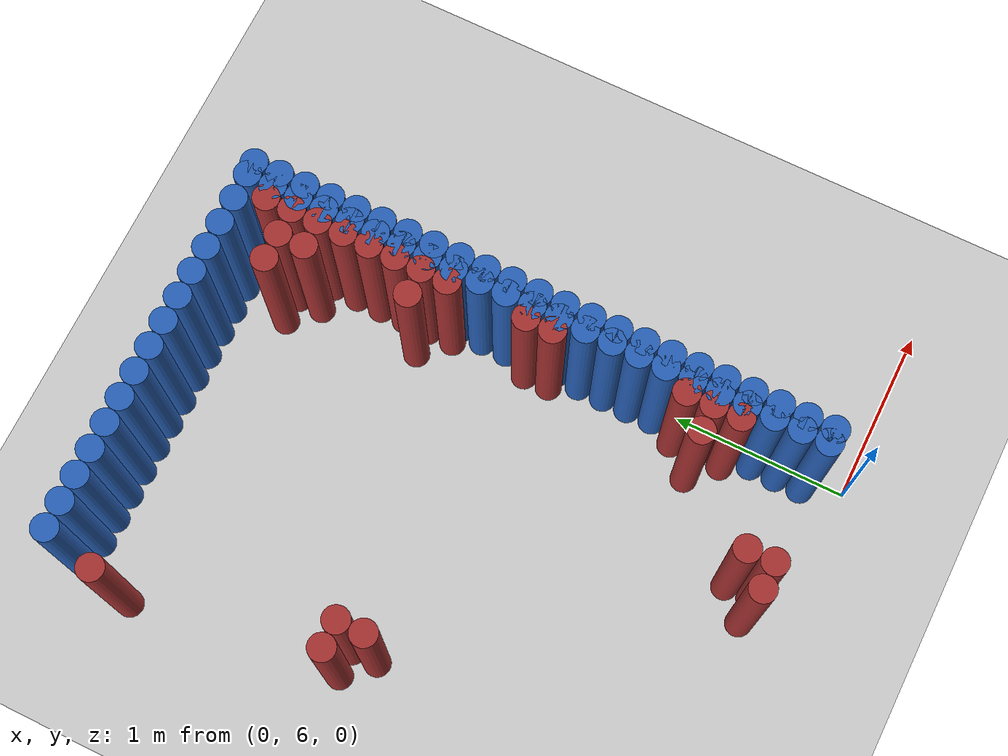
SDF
<sdf version="1.6">
 <world name="barn_world">
  <model name="ground_plane">
   <static>1</static>
   <link name="link">
    <collision name="collision">
     <geometry><plane><normal>0 0 1</normal><size>100 100</size></plane></geometry>
    </collision>
    <visual name="visual">
     <geometry><plane><normal>0 0 1</normal><size>100 100</size></plane></geometry>
     <material>
      <script><uri>file://media/materials/scripts/gazebo.material</uri><name>Gazebo/Grey</name></script>
     </material>
    </visual>
   </link>
  </model>
  <model name="unit_cylinder_193">
   <static>1</static>
   <pose>-2.2500 9.2250 0.5 0 0 0</pose>
   <link name="link">
    <collision name="collision">
     <geometry><cylinder><radius>0.075</radius><length>1</length></cylinder></geometry>
    </collision>
    <visual name="visual">
     <geometry><cylinder><radius>0.075</radius><length>1</length></cylinder></geometry>
     <material><ambient>0.648 0.192 0.192 1</ambient><diffuse>0.648 0.192 0.192 1</diffuse></material>
    </visual>
   </link>
  </model>
  <model name="unit_cylinder_194">
   <static>1</static>
   <pose>-2.1000 8.0250 0.5 0 0 0</pose>
   <link name="link">
    <collision name="collision">
     <geometry><cylinder><radius>0.075</radius><length>1</length></cylinder></geometry>
    </collision>
    <visual name="visual">
     <geometry><cylinder><radius>0.075</radius><length>1</length></cylinder></geometry>
     <material><ambient>0.648 0.192 0.192 1</ambient><diffuse>0.648 0.192 0.192 1</diffuse></material>
    </visual>
   </link>
  </model>
  <model name="unit_cylinder_195">
   <static>1</static>
   <pose>-1.9500 7.8750 0.5 0 0 0</pose>
   <link name="link">
    <collision name="collision">
     <geometry><cylinder><radius>0.075</radius><length>1</length></cylinder></geometry>
    </collision>
    <visual name="visual">
     <geometry><cylinder><radius>0.075</radius><length>1</length></cylinder></geometry>
     <material><ambient>0.648 0.192 0.192 1</ambient><diffuse>0.648 0.192 0.192 1</diffuse></material>
    </visual>
   </link>
  </model>
  <model name="unit_cylinder_196">
   <static>1</static>
   <pose>-1.9500 8.0250 0.5 0 0 0</pose>
   <link name="link">
    <collision name="collision">
     <geometry><cylinder><radius>0.075</radius><length>1</length></cylinder></geometry>
    </collision>
    <visual name="visual">
     <geometry><cylinder><radius>0.075</radius><length>1</length></cylinder></geometry>
     <material><ambient>0.648 0.192 0.192 1</ambient><diffuse>0.648 0.192 0.192 1</diffuse></material>
    </visual>
   </link>
  </model>
  <model name="unit_cylinder_197">
   <static>1</static>
   <pose>-0.9000 6.2250 0.5 0 0 0</pose>
   <link name="link">
    <collision name="collision">
     <geometry><cylinder><radius>0.075</radius><length>1</length></cylinder></geometry>
    </collision>
    <visual name="visual">
     <geometry><cylinder><radius>0.075</radius><length>1</length></cylinder></geometry>
     <material><ambient>0.648 0.192 0.192 1</ambient><diffuse>0.648 0.192 0.192 1</diffuse></material>
    </visual>
   </link>
  </model>
  <model name="unit_cylinder_198">
   <static>1</static>
   <pose>-0.7500 6.2250 0.5 0 0 0</pose>
   <link name="link">
    <collision name="collision">
     <geometry><cylinder><radius>0.075</radius><length>1</length></cylinder></geometry>
    </collision>
    <visual name="visual">
     <geometry><cylinder><radius>0.075</radius><length>1</length></cylinder></geometry>
     <material><ambient>0.648 0.192 0.192 1</ambient><diffuse>0.648 0.192 0.192 1</diffuse></material>
    </visual>
   </link>
  </model>
  <model name="unit_cylinder_199">
   <static>1</static>
   <pose>-0.7500 6.3750 0.5 0 0 0</pose>
   <link name="link">
    <collision name="collision">
     <geometry><cylinder><radius>0.075</radius><length>1</length></cylinder></geometry>
    </collision>
    <visual name="visual">
     <geometry><cylinder><radius>0.075</radius><length>1</length></cylinder></geometry>
     <material><ambient>0.648 0.192 0.192 1</ambient><diffuse>0.648 0.192 0.192 1</diffuse></material>
    </visual>
   </link>
  </model>
  <model name="unit_cylinder_200">
   <static>1</static>
   <pose>-0.4500 9.2250 0.5 0 0 0</pose>
   <link name="link">
    <collision name="collision">
     <geometry><cylinder><radius>0.075</radius><length>1</length></cylinder></geometry>
    </collision>
    <visual name="visual">
     <geometry><cylinder><radius>0.075</radius><length>1</length></cylinder></geometry>
     <material><ambient>0.648 0.192 0.192 1</ambient><diffuse>0.648 0.192 0.192 1</diffuse></material>
    </visual>
   </link>
  </model>
  <model name="unit_cylinder_202">
   <static>1</static>
   <pose>-0.3000 6.8250 0.5 0 0 0</pose>
   <link name="link">
    <collision name="collision">
     <geometry><cylinder><radius>0.075</radius><length>1</length></cylinder></geometry>
    </collision>
    <visual name="visual">
     <geometry><cylinder><radius>0.075</radius><length>1</length></cylinder></geometry>
     <material><ambient>0.648 0.192 0.192 1</ambient><diffuse>0.648 0.192 0.192 1</diffuse></material>
    </visual>
   </link>
  </model>
  <model name="unit_cylinder_203">
   <static>1</static>
   <pose>-0.3000 8.4750 0.5 0 0 0</pose>
   <link name="link">
    <collision name="collision">
     <geometry><cylinder><radius>0.075</radius><length>1</length></cylinder></geometry>
    </collision>
    <visual name="visual">
     <geometry><cylinder><radius>0.075</radius><length>1</length></cylinder></geometry>
     <material><ambient>0.648 0.192 0.192 1</ambient><diffuse>0.648 0.192 0.192 1</diffuse></material>
    </visual>
   </link>
  </model>
  <model name="unit_cylinder_204">
   <static>1</static>
   <pose>-0.3000 9.0750 0.5 0 0 0</pose>
   <link name="link">
    <collision name="collision">
     <geometry><cylinder><radius>0.075</radius><length>1</length></cylinder></geometry>
    </collision>
    <visual name="visual">
     <geometry><cylinder><radius>0.075</radius><length>1</length></cylinder></geometry>
     <material><ambient>0.648 0.192 0.192 1</ambient><diffuse>0.648 0.192 0.192 1</diffuse></material>
    </visual>
   </link>
  </model>
  <model name="unit_cylinder_205">
   <static>1</static>
   <pose>-0.3000 9.2250 0.5 0 0 0</pose>
   <link name="link">
    <collision name="collision">
     <geometry><cylinder><radius>0.075</radius><length>1</length></cylinder></geometry>
    </collision>
    <visual name="visual">
     <geometry><cylinder><radius>0.075</radius><length>1</length></cylinder></geometry>
     <material><ambient>0.648 0.192 0.192 1</ambient><diffuse>0.648 0.192 0.192 1</diffuse></material>
    </visual>
   </link>
  </model>
  <model name="unit_cylinder_209">
   <static>1</static>
   <pose>-0.1500 6.6750 0.5 0 0 0</pose>
   <link name="link">
    <collision name="collision">
     <geometry><cylinder><radius>0.075</radius><length>1</length></cylinder></geometry>
    </collision>
    <visual name="visual">
     <geometry><cylinder><radius>0.075</radius><length>1</length></cylinder></geometry>
     <material><ambient>0.648 0.192 0.192 1</ambient><diffuse>0.648 0.192 0.192 1</diffuse></material>
    </visual>
   </link>
  </model>
  <model name="unit_cylinder_210">
   <static>1</static>
   <pose>-0.1500 6.8250 0.5 0 0 0</pose>
   <link name="link">
    <collision name="collision">
     <geometry><cylinder><radius>0.075</radius><length>1</length></cylinder></geometry>
    </collision>
    <visual name="visual">
     <geometry><cylinder><radius>0.075</radius><length>1</length></cylinder></geometry>
     <material><ambient>0.648 0.192 0.192 1</ambient><diffuse>0.648 0.192 0.192 1</diffuse></material>
    </visual>
   </link>
  </model>
  <model name="unit_cylinder_211">
   <static>1</static>
   <pose>-0.1500 6.9750 0.5 0 0 0</pose>
   <link name="link">
    <collision name="collision">
     <geometry><cylinder><radius>0.075</radius><length>1</length></cylinder></geometry>
    </collision>
    <visual name="visual">
     <geometry><cylinder><radius>0.075</radius><length>1</length></cylinder></geometry>
     <material><ambient>0.648 0.192 0.192 1</ambient><diffuse>0.648 0.192 0.192 1</diffuse></material>
    </visual>
   </link>
  </model>
  <model name="unit_cylinder_212">
   <static>1</static>
   <pose>-0.1500 7.7250 0.5 0 0 0</pose>
   <link name="link">
    <collision name="collision">
     <geometry><cylinder><radius>0.075</radius><length>1</length></cylinder></geometry>
    </collision>
    <visual name="visual">
     <geometry><cylinder><radius>0.075</radius><length>1</length></cylinder></geometry>
     <material><ambient>0.648 0.192 0.192 1</ambient><diffuse>0.648 0.192 0.192 1</diffuse></material>
    </visual>
   </link>
  </model>
  <model name="unit_cylinder_213">
   <static>1</static>
   <pose>-0.1500 7.8750 0.5 0 0 0</pose>
   <link name="link">
    <collision name="collision">
     <geometry><cylinder><radius>0.075</radius><length>1</length></cylinder></geometry>
    </collision>
    <visual name="visual">
     <geometry><cylinder><radius>0.075</radius><length>1</length></cylinder></geometry>
     <material><ambient>0.648 0.192 0.192 1</ambient><diffuse>0.648 0.192 0.192 1</diffuse></material>
    </visual>
   </link>
  </model>
  <model name="unit_cylinder_214">
   <static>1</static>
   <pose>-0.1500 8.3250 0.5 0 0 0</pose>
   <link name="link">
    <collision name="collision">
     <geometry><cylinder><radius>0.075</radius><length>1</length></cylinder></geometry>
    </collision>
    <visual name="visual">
     <geometry><cylinder><radius>0.075</radius><length>1</length></cylinder></geometry>
     <material><ambient>0.648 0.192 0.192 1</ambient><diffuse>0.648 0.192 0.192 1</diffuse></material>
    </visual>
   </link>
  </model>
  <model name="unit_cylinder_215">
   <static>1</static>
   <pose>-0.1500 8.4750 0.5 0 0 0</pose>
   <link name="link">
    <collision name="collision">
     <geometry><cylinder><radius>0.075</radius><length>1</length></cylinder></geometry>
    </collision>
    <visual name="visual">
     <geometry><cylinder><radius>0.075</radius><length>1</length></cylinder></geometry>
     <material><ambient>0.648 0.192 0.192 1</ambient><diffuse>0.648 0.192 0.192 1</diffuse></material>
    </visual>
   </link>
  </model>
  <model name="unit_cylinder_216">
   <static>1</static>
   <pose>-0.1500 8.6250 0.5 0 0 0</pose>
   <link name="link">
    <collision name="collision">
     <geometry><cylinder><radius>0.075</radius><length>1</length></cylinder></geometry>
    </collision>
    <visual name="visual">
     <geometry><cylinder><radius>0.075</radius><length>1</length></cylinder></geometry>
     <material><ambient>0.648 0.192 0.192 1</ambient><diffuse>0.648 0.192 0.192 1</diffuse></material>
    </visual>
   </link>
  </model>
  <model name="unit_cylinder_217">
   <static>1</static>
   <pose>-0.1500 8.7750 0.5 0 0 0</pose>
   <link name="link">
    <collision name="collision">
     <geometry><cylinder><radius>0.075</radius><length>1</length></cylinder></geometry>
    </collision>
    <visual name="visual">
     <geometry><cylinder><radius>0.075</radius><length>1</length></cylinder></geometry>
     <material><ambient>0.648 0.192 0.192 1</ambient><diffuse>0.648 0.192 0.192 1</diffuse></material>
    </visual>
   </link>
  </model>
  <model name="unit_cylinder_218">
   <static>1</static>
   <pose>-0.1500 8.9250 0.5 0 0 0</pose>
   <link name="link">
    <collision name="collision">
     <geometry><cylinder><radius>0.075</radius><length>1</length></cylinder></geometry>
    </collision>
    <visual name="visual">
     <geometry><cylinder><radius>0.075</radius><length>1</length></cylinder></geometry>
     <material><ambient>0.648 0.192 0.192 1</ambient><diffuse>0.648 0.192 0.192 1</diffuse></material>
    </visual>
   </link>
  </model>
  <model name="unit_cylinder_219">
   <static>1</static>
   <pose>-0.1500 9.0750 0.5 0 0 0</pose>
   <link name="link">
    <collision name="collision">
     <geometry><cylinder><radius>0.075</radius><length>1</length></cylinder></geometry>
    </collision>
    <visual name="visual">
     <geometry><cylinder><radius>0.075</radius><length>1</length></cylinder></geometry>
     <material><ambient>0.648 0.192 0.192 1</ambient><diffuse>0.648 0.192 0.192 1</diffuse></material>
    </visual>
   </link>
  </model>
  <model name="unit_cylinder_220">
   <static>1</static>
   <pose>-0.1500 9.2250 0.5 0 0 0</pose>
   <link name="link">
    <collision name="collision">
     <geometry><cylinder><radius>0.075</radius><length>1</length></cylinder></geometry>
    </collision>
    <visual name="visual">
     <geometry><cylinder><radius>0.075</radius><length>1</length></cylinder></geometry>
     <material><ambient>0.648 0.192 0.192 1</ambient><diffuse>0.648 0.192 0.192 1</diffuse></material>
    </visual>
   </link>
  </model>
  <model name="unit_cylinder_221">
   <static>1</static>
   <pose>-0.1500 9.3750 0.5 0 0 0</pose>
   <link name="link">
    <collision name="collision">
     <geometry><cylinder><radius>0.075</radius><length>1</length></cylinder></geometry>
    </collision>
    <visual name="visual">
     <geometry><cylinder><radius>0.075</radius><length>1</length></cylinder></geometry>
     <material><ambient>0.648 0.192 0.192 1</ambient><diffuse>0.648 0.192 0.192 1</diffuse></material>
    </visual>
   </link>
  </model>
  <model name="unit_cylinder_229">
   <static>1</static>
   <pose>0.0000 6.2250 0.5 0 0 0</pose>
   <link name="link">
    <collision name="collision">
     <geometry><cylinder><radius>0.075</radius><length>1</length></cylinder></geometry>
    </collision>
    <visual name="visual">
     <geometry><cylinder><radius>0.075</radius><length>1</length></cylinder></geometry>
     <material><ambient>0.152 0.379 0.72 1</ambient><diffuse>0.152 0.379 0.72 1</diffuse></material>
    </visual>
   </link>
  </model>
  <model name="unit_cylinder_230">
   <static>1</static>
   <pose>0.0000 6.3750 0.5 0 0 0</pose>
   <link name="link">
    <collision name="collision">
     <geometry><cylinder><radius>0.075</radius><length>1</length></cylinder></geometry>
    </collision>
    <visual name="visual">
     <geometry><cylinder><radius>0.075</radius><length>1</length></cylinder></geometry>
     <material><ambient>0.152 0.379 0.72 1</ambient><diffuse>0.152 0.379 0.72 1</diffuse></material>
    </visual>
   </link>
  </model>
  <model name="unit_cylinder_231">
   <static>1</static>
   <pose>0.0000 6.5250 0.5 0 0 0</pose>
   <link name="link">
    <collision name="collision">
     <geometry><cylinder><radius>0.075</radius><length>1</length></cylinder></geometry>
    </collision>
    <visual name="visual">
     <geometry><cylinder><radius>0.075</radius><length>1</length></cylinder></geometry>
     <material><ambient>0.152 0.379 0.72 1</ambient><diffuse>0.152 0.379 0.72 1</diffuse></material>
    </visual>
   </link>
  </model>
  <model name="unit_cylinder_232">
   <static>1</static>
   <pose>0.0000 6.6750 0.5 0 0 0</pose>
   <link name="link">
    <collision name="collision">
     <geometry><cylinder><radius>0.075</radius><length>1</length></cylinder></geometry>
    </collision>
    <visual name="visual">
     <geometry><cylinder><radius>0.075</radius><length>1</length></cylinder></geometry>
     <material><ambient>0.152 0.379 0.72 1</ambient><diffuse>0.152 0.379 0.72 1</diffuse></material>
    </visual>
   </link>
  </model>
  <model name="unit_cylinder_233">
   <static>1</static>
   <pose>0.0000 6.8250 0.5 0 0 0</pose>
   <link name="link">
    <collision name="collision">
     <geometry><cylinder><radius>0.075</radius><length>1</length></cylinder></geometry>
    </collision>
    <visual name="visual">
     <geometry><cylinder><radius>0.075</radius><length>1</length></cylinder></geometry>
     <material><ambient>0.152 0.379 0.72 1</ambient><diffuse>0.152 0.379 0.72 1</diffuse></material>
    </visual>
   </link>
  </model>
  <model name="unit_cylinder_234">
   <static>1</static>
   <pose>0.0000 6.9750 0.5 0 0 0</pose>
   <link name="link">
    <collision name="collision">
     <geometry><cylinder><radius>0.075</radius><length>1</length></cylinder></geometry>
    </collision>
    <visual name="visual">
     <geometry><cylinder><radius>0.075</radius><length>1</length></cylinder></geometry>
     <material><ambient>0.152 0.379 0.72 1</ambient><diffuse>0.152 0.379 0.72 1</diffuse></material>
    </visual>
   </link>
  </model>
  <model name="unit_cylinder_235">
   <static>1</static>
   <pose>0.0000 7.1250 0.5 0 0 0</pose>
   <link name="link">
    <collision name="collision">
     <geometry><cylinder><radius>0.075</radius><length>1</length></cylinder></geometry>
    </collision>
    <visual name="visual">
     <geometry><cylinder><radius>0.075</radius><length>1</length></cylinder></geometry>
     <material><ambient>0.152 0.379 0.72 1</ambient><diffuse>0.152 0.379 0.72 1</diffuse></material>
    </visual>
   </link>
  </model>
  <model name="unit_cylinder_236">
   <static>1</static>
   <pose>0.0000 7.2750 0.5 0 0 0</pose>
   <link name="link">
    <collision name="collision">
     <geometry><cylinder><radius>0.075</radius><length>1</length></cylinder></geometry>
    </collision>
    <visual name="visual">
     <geometry><cylinder><radius>0.075</radius><length>1</length></cylinder></geometry>
     <material><ambient>0.152 0.379 0.72 1</ambient><diffuse>0.152 0.379 0.72 1</diffuse></material>
    </visual>
   </link>
  </model>
  <model name="unit_cylinder_237">
   <static>1</static>
   <pose>0.0000 7.4250 0.5 0 0 0</pose>
   <link name="link">
    <collision name="collision">
     <geometry><cylinder><radius>0.075</radius><length>1</length></cylinder></geometry>
    </collision>
    <visual name="visual">
     <geometry><cylinder><radius>0.075</radius><length>1</length></cylinder></geometry>
     <material><ambient>0.152 0.379 0.72 1</ambient><diffuse>0.152 0.379 0.72 1</diffuse></material>
    </visual>
   </link>
  </model>
  <model name="unit_cylinder_238">
   <static>1</static>
   <pose>0.0000 7.5750 0.5 0 0 0</pose>
   <link name="link">
    <collision name="collision">
     <geometry><cylinder><radius>0.075</radius><length>1</length></cylinder></geometry>
    </collision>
    <visual name="visual">
     <geometry><cylinder><radius>0.075</radius><length>1</length></cylinder></geometry>
     <material><ambient>0.152 0.379 0.72 1</ambient><diffuse>0.152 0.379 0.72 1</diffuse></material>
    </visual>
   </link>
  </model>
  <model name="unit_cylinder_239">
   <static>1</static>
   <pose>0.0000 7.7250 0.5 0 0 0</pose>
   <link name="link">
    <collision name="collision">
     <geometry><cylinder><radius>0.075</radius><length>1</length></cylinder></geometry>
    </collision>
    <visual name="visual">
     <geometry><cylinder><radius>0.075</radius><length>1</length></cylinder></geometry>
     <material><ambient>0.152 0.379 0.72 1</ambient><diffuse>0.152 0.379 0.72 1</diffuse></material>
    </visual>
   </link>
  </model>
  <model name="unit_cylinder_240">
   <static>1</static>
   <pose>0.0000 7.8750 0.5 0 0 0</pose>
   <link name="link">
    <collision name="collision">
     <geometry><cylinder><radius>0.075</radius><length>1</length></cylinder></geometry>
    </collision>
    <visual name="visual">
     <geometry><cylinder><radius>0.075</radius><length>1</length></cylinder></geometry>
     <material><ambient>0.152 0.379 0.72 1</ambient><diffuse>0.152 0.379 0.72 1</diffuse></material>
    </visual>
   </link>
  </model>
  <model name="unit_cylinder_241">
   <static>1</static>
   <pose>0.0000 8.0250 0.5 0 0 0</pose>
   <link name="link">
    <collision name="collision">
     <geometry><cylinder><radius>0.075</radius><length>1</length></cylinder></geometry>
    </collision>
    <visual name="visual">
     <geometry><cylinder><radius>0.075</radius><length>1</length></cylinder></geometry>
     <material><ambient>0.152 0.379 0.72 1</ambient><diffuse>0.152 0.379 0.72 1</diffuse></material>
    </visual>
   </link>
  </model>
  <model name="unit_cylinder_242">
   <static>1</static>
   <pose>0.0000 8.1750 0.5 0 0 0</pose>
   <link name="link">
    <collision name="collision">
     <geometry><cylinder><radius>0.075</radius><length>1</length></cylinder></geometry>
    </collision>
    <visual name="visual">
     <geometry><cylinder><radius>0.075</radius><length>1</length></cylinder></geometry>
     <material><ambient>0.152 0.379 0.72 1</ambient><diffuse>0.152 0.379 0.72 1</diffuse></material>
    </visual>
   </link>
  </model>
  <model name="unit_cylinder_243">
   <static>1</static>
   <pose>0.0000 8.3250 0.5 0 0 0</pose>
   <link name="link">
    <collision name="collision">
     <geometry><cylinder><radius>0.075</radius><length>1</length></cylinder></geometry>
    </collision>
    <visual name="visual">
     <geometry><cylinder><radius>0.075</radius><length>1</length></cylinder></geometry>
     <material><ambient>0.152 0.379 0.72 1</ambient><diffuse>0.152 0.379 0.72 1</diffuse></material>
    </visual>
   </link>
  </model>
  <model name="unit_cylinder_244">
   <static>1</static>
   <pose>0.0000 8.4750 0.5 0 0 0</pose>
   <link name="link">
    <collision name="collision">
     <geometry><cylinder><radius>0.075</radius><length>1</length></cylinder></geometry>
    </collision>
    <visual name="visual">
     <geometry><cylinder><radius>0.075</radius><length>1</length></cylinder></geometry>
     <material><ambient>0.152 0.379 0.72 1</ambient><diffuse>0.152 0.379 0.72 1</diffuse></material>
    </visual>
   </link>
  </model>
  <model name="unit_cylinder_245">
   <static>1</static>
   <pose>0.0000 8.6250 0.5 0 0 0</pose>
   <link name="link">
    <collision name="collision">
     <geometry><cylinder><radius>0.075</radius><length>1</length></cylinder></geometry>
    </collision>
    <visual name="visual">
     <geometry><cylinder><radius>0.075</radius><length>1</length></cylinder></geometry>
     <material><ambient>0.152 0.379 0.72 1</ambient><diffuse>0.152 0.379 0.72 1</diffuse></material>
    </visual>
   </link>
  </model>
  <model name="unit_cylinder_246">
   <static>1</static>
   <pose>0.0000 8.7750 0.5 0 0 0</pose>
   <link name="link">
    <collision name="collision">
     <geometry><cylinder><radius>0.075</radius><length>1</length></cylinder></geometry>
    </collision>
    <visual name="visual">
     <geometry><cylinder><radius>0.075</radius><length>1</length></cylinder></geometry>
     <material><ambient>0.152 0.379 0.72 1</ambient><diffuse>0.152 0.379 0.72 1</diffuse></material>
    </visual>
   </link>
  </model>
  <model name="unit_cylinder_247">
   <static>1</static>
   <pose>0.0000 8.9250 0.5 0 0 0</pose>
   <link name="link">
    <collision name="collision">
     <geometry><cylinder><radius>0.075</radius><length>1</length></cylinder></geometry>
    </collision>
    <visual name="visual">
     <geometry><cylinder><radius>0.075</radius><length>1</length></cylinder></geometry>
     <material><ambient>0.152 0.379 0.72 1</ambient><diffuse>0.152 0.379 0.72 1</diffuse></material>
    </visual>
   </link>
  </model>
  <model name="unit_cylinder_248">
   <static>1</static>
   <pose>0.0000 9.0750 0.5 0 0 0</pose>
   <link name="link">
    <collision name="collision">
     <geometry><cylinder><radius>0.075</radius><length>1</length></cylinder></geometry>
    </collision>
    <visual name="visual">
     <geometry><cylinder><radius>0.075</radius><length>1</length></cylinder></geometry>
     <material><ambient>0.152 0.379 0.72 1</ambient><diffuse>0.152 0.379 0.72 1</diffuse></material>
    </visual>
   </link>
  </model>
  <model name="unit_cylinder_249">
   <static>1</static>
   <pose>0.0000 9.2250 0.5 0 0 0</pose>
   <link name="link">
    <collision name="collision">
     <geometry><cylinder><radius>0.075</radius><length>1</length></cylinder></geometry>
    </collision>
    <visual name="visual">
     <geometry><cylinder><radius>0.075</radius><length>1</length></cylinder></geometry>
     <material><ambient>0.152 0.379 0.72 1</ambient><diffuse>0.152 0.379 0.72 1</diffuse></material>
    </visual>
   </link>
  </model>
  <model name="unit_cylinder_250">
   <static>1</static>
   <pose>0.0000 9.3750 0.5 0 0 0</pose>
   <link name="link">
    <collision name="collision">
     <geometry><cylinder><radius>0.075</radius><length>1</length></cylinder></geometry>
    </collision>
    <visual name="visual">
     <geometry><cylinder><radius>0.075</radius><length>1</length></cylinder></geometry>
     <material><ambient>0.152 0.379 0.72 1</ambient><diffuse>0.152 0.379 0.72 1</diffuse></material>
    </visual>
   </link>
  </model>
  <model name="unit_cylinder_251">
   <static>1</static>
   <pose>0.0000 9.5250 0.5 0 0 0</pose>
   <link name="link">
    <collision name="collision">
     <geometry><cylinder><radius>0.075</radius><length>1</length></cylinder></geometry>
    </collision>
    <visual name="visual">
     <geometry><cylinder><radius>0.075</radius><length>1</length></cylinder></geometry>
     <material><ambient>0.152 0.379 0.72 1</ambient><diffuse>0.152 0.379 0.72 1</diffuse></material>
    </visual>
   </link>
  </model>
  <model name="unit_cylinder_252">
   <static>1</static>
   <pose>-0.0750 9.5250 0.5 0 0 0</pose>
   <link name="link">
    <collision name="collision">
     <geometry><cylinder><radius>0.075</radius><length>1</length></cylinder></geometry>
    </collision>
    <visual name="visual">
     <geometry><cylinder><radius>0.075</radius><length>1</length></cylinder></geometry>
     <material><ambient>0.152 0.379 0.72 1</ambient><diffuse>0.152 0.379 0.72 1</diffuse></material>
    </visual>
   </link>
  </model>
  <model name="unit_cylinder_253">
   <static>1</static>
   <pose>-0.2250 9.5250 0.5 0 0 0</pose>
   <link name="link">
    <collision name="collision">
     <geometry><cylinder><radius>0.075</radius><length>1</length></cylinder></geometry>
    </collision>
    <visual name="visual">
     <geometry><cylinder><radius>0.075</radius><length>1</length></cylinder></geometry>
     <material><ambient>0.152 0.379 0.72 1</ambient><diffuse>0.152 0.379 0.72 1</diffuse></material>
    </visual>
   </link>
  </model>
  <model name="unit_cylinder_254">
   <static>1</static>
   <pose>-0.3750 9.5250 0.5 0 0 0</pose>
   <link name="link">
    <collision name="collision">
     <geometry><cylinder><radius>0.075</radius><length>1</length></cylinder></geometry>
    </collision>
    <visual name="visual">
     <geometry><cylinder><radius>0.075</radius><length>1</length></cylinder></geometry>
     <material><ambient>0.152 0.379 0.72 1</ambient><diffuse>0.152 0.379 0.72 1</diffuse></material>
    </visual>
   </link>
  </model>
  <model name="unit_cylinder_255">
   <static>1</static>
   <pose>-0.5250 9.5250 0.5 0 0 0</pose>
   <link name="link">
    <collision name="collision">
     <geometry><cylinder><radius>0.075</radius><length>1</length></cylinder></geometry>
    </collision>
    <visual name="visual">
     <geometry><cylinder><radius>0.075</radius><length>1</length></cylinder></geometry>
     <material><ambient>0.152 0.379 0.72 1</ambient><diffuse>0.152 0.379 0.72 1</diffuse></material>
    </visual>
   </link>
  </model>
  <model name="unit_cylinder_256">
   <static>1</static>
   <pose>-0.6750 9.5250 0.5 0 0 0</pose>
   <link name="link">
    <collision name="collision">
     <geometry><cylinder><radius>0.075</radius><length>1</length></cylinder></geometry>
    </collision>
    <visual name="visual">
     <geometry><cylinder><radius>0.075</radius><length>1</length></cylinder></geometry>
     <material><ambient>0.152 0.379 0.72 1</ambient><diffuse>0.152 0.379 0.72 1</diffuse></material>
    </visual>
   </link>
  </model>
  <model name="unit_cylinder_257">
   <static>1</static>
   <pose>-0.8250 9.5250 0.5 0 0 0</pose>
   <link name="link">
    <collision name="collision">
     <geometry><cylinder><radius>0.075</radius><length>1</length></cylinder></geometry>
    </collision>
    <visual name="visual">
     <geometry><cylinder><radius>0.075</radius><length>1</length></cylinder></geometry>
     <material><ambient>0.152 0.379 0.72 1</ambient><diffuse>0.152 0.379 0.72 1</diffuse></material>
    </visual>
   </link>
  </model>
  <model name="unit_cylinder_258">
   <static>1</static>
   <pose>-0.9750 9.5250 0.5 0 0 0</pose>
   <link name="link">
    <collision name="collision">
     <geometry><cylinder><radius>0.075</radius><length>1</length></cylinder></geometry>
    </collision>
    <visual name="visual">
     <geometry><cylinder><radius>0.075</radius><length>1</length></cylinder></geometry>
     <material><ambient>0.152 0.379 0.72 1</ambient><diffuse>0.152 0.379 0.72 1</diffuse></material>
    </visual>
   </link>
  </model>
  <model name="unit_cylinder_259">
   <static>1</static>
   <pose>-1.1250 9.5250 0.5 0 0 0</pose>
   <link name="link">
    <collision name="collision">
     <geometry><cylinder><radius>0.075</radius><length>1</length></cylinder></geometry>
    </collision>
    <visual name="visual">
     <geometry><cylinder><radius>0.075</radius><length>1</length></cylinder></geometry>
     <material><ambient>0.152 0.379 0.72 1</ambient><diffuse>0.152 0.379 0.72 1</diffuse></material>
    </visual>
   </link>
  </model>
  <model name="unit_cylinder_260">
   <static>1</static>
   <pose>-1.2750 9.5250 0.5 0 0 0</pose>
   <link name="link">
    <collision name="collision">
     <geometry><cylinder><radius>0.075</radius><length>1</length></cylinder></geometry>
    </collision>
    <visual name="visual">
     <geometry><cylinder><radius>0.075</radius><length>1</length></cylinder></geometry>
     <material><ambient>0.152 0.379 0.72 1</ambient><diffuse>0.152 0.379 0.72 1</diffuse></material>
    </visual>
   </link>
  </model>
  <model name="unit_cylinder_261">
   <static>1</static>
   <pose>-1.4250 9.5250 0.5 0 0 0</pose>
   <link name="link">
    <collision name="collision">
     <geometry><cylinder><radius>0.075</radius><length>1</length></cylinder></geometry>
    </collision>
    <visual name="visual">
     <geometry><cylinder><radius>0.075</radius><length>1</length></cylinder></geometry>
     <material><ambient>0.152 0.379 0.72 1</ambient><diffuse>0.152 0.379 0.72 1</diffuse></material>
    </visual>
   </link>
  </model>
  <model name="unit_cylinder_262">
   <static>1</static>
   <pose>-1.5750 9.5250 0.5 0 0 0</pose>
   <link name="link">
    <collision name="collision">
     <geometry><cylinder><radius>0.075</radius><length>1</length></cylinder></geometry>
    </collision>
    <visual name="visual">
     <geometry><cylinder><radius>0.075</radius><length>1</length></cylinder></geometry>
     <material><ambient>0.152 0.379 0.72 1</ambient><diffuse>0.152 0.379 0.72 1</diffuse></material>
    </visual>
   </link>
  </model>
  <model name="unit_cylinder_263">
   <static>1</static>
   <pose>-1.7250 9.5250 0.5 0 0 0</pose>
   <link name="link">
    <collision name="collision">
     <geometry><cylinder><radius>0.075</radius><length>1</length></cylinder></geometry>
    </collision>
    <visual name="visual">
     <geometry><cylinder><radius>0.075</radius><length>1</length></cylinder></geometry>
     <material><ambient>0.152 0.379 0.72 1</ambient><diffuse>0.152 0.379 0.72 1</diffuse></material>
    </visual>
   </link>
  </model>
  <model name="unit_cylinder_264">
   <static>1</static>
   <pose>-1.8750 9.5250 0.5 0 0 0</pose>
   <link name="link">
    <collision name="collision">
     <geometry><cylinder><radius>0.075</radius><length>1</length></cylinder></geometry>
    </collision>
    <visual name="visual">
     <geometry><cylinder><radius>0.075</radius><length>1</length></cylinder></geometry>
     <material><ambient>0.152 0.379 0.72 1</ambient><diffuse>0.152 0.379 0.72 1</diffuse></material>
    </visual>
   </link>
  </model>
  <model name="unit_cylinder_265">
   <static>1</static>
   <pose>-2.0250 9.5250 0.5 0 0 0</pose>
   <link name="link">
    <collision name="collision">
     <geometry><cylinder><radius>0.075</radius><length>1</length></cylinder></geometry>
    </collision>
    <visual name="visual">
     <geometry><cylinder><radius>0.075</radius><length>1</length></cylinder></geometry>
     <material><ambient>0.152 0.379 0.72 1</ambient><diffuse>0.152 0.379 0.72 1</diffuse></material>
    </visual>
   </link>
  </model>
  <model name="unit_cylinder_266">
   <static>1</static>
   <pose>-2.1750 9.5250 0.5 0 0 0</pose>
   <link name="link">
    <collision name="collision">
     <geometry><cylinder><radius>0.075</radius><length>1</length></cylinder></geometry>
    </collision>
    <visual name="visual">
     <geometry><cylinder><radius>0.075</radius><length>1</length></cylinder></geometry>
     <material><ambient>0.152 0.379 0.72 1</ambient><diffuse>0.152 0.379 0.72 1</diffuse></material>
    </visual>
   </link>
  </model>
  <model name="unit_cylinder_296">
   <static>1</static>
   <pose>-0.0750 6.2250 0.5 0 0 0</pose>
   <link name="link">
    <collision name="collision">
     <geometry><cylinder><radius>0.075</radius><length>1</length></cylinder></geometry>
    </collision>
    <visual name="visual">
     <geometry><cylinder><radius>0.075</radius><length>1</length></cylinder></geometry>
     <material><ambient>0.152 0.379 0.72 1</ambient><diffuse>0.152 0.379 0.72 1</diffuse></material>
    </visual>
   </link>
  </model>
  <model name="unit_cylinder_298">
   <static>1</static>
   <pose>-0.0750 6.3750 0.5 0 0 0</pose>
   <link name="link">
    <collision name="collision">
     <geometry><cylinder><radius>0.075</radius><length>1</length></cylinder></geometry>
    </collision>
    <visual name="visual">
     <geometry><cylinder><radius>0.075</radius><length>1</length></cylinder></geometry>
     <material><ambient>0.152 0.379 0.72 1</ambient><diffuse>0.152 0.379 0.72 1</diffuse></material>
    </visual>
   </link>
  </model>
  <model name="unit_cylinder_300">
   <static>1</static>
   <pose>-0.0750 6.5250 0.5 0 0 0</pose>
   <link name="link">
    <collision name="collision">
     <geometry><cylinder><radius>0.075</radius><length>1</length></cylinder></geometry>
    </collision>
    <visual name="visual">
     <geometry><cylinder><radius>0.075</radius><length>1</length></cylinder></geometry>
     <material><ambient>0.152 0.379 0.72 1</ambient><diffuse>0.152 0.379 0.72 1</diffuse></material>
    </visual>
   </link>
  </model>
  <model name="unit_cylinder_302">
   <static>1</static>
   <pose>-0.0750 6.6750 0.5 0 0 0</pose>
   <link name="link">
    <collision name="collision">
     <geometry><cylinder><radius>0.075</radius><length>1</length></cylinder></geometry>
    </collision>
    <visual name="visual">
     <geometry><cylinder><radius>0.075</radius><length>1</length></cylinder></geometry>
     <material><ambient>0.152 0.379 0.72 1</ambient><diffuse>0.152 0.379 0.72 1</diffuse></material>
    </visual>
   </link>
  </model>
  <model name="unit_cylinder_304">
   <static>1</static>
   <pose>-0.0750 6.8250 0.5 0 0 0</pose>
   <link name="link">
    <collision name="collision">
     <geometry><cylinder><radius>0.075</radius><length>1</length></cylinder></geometry>
    </collision>
    <visual name="visual">
     <geometry><cylinder><radius>0.075</radius><length>1</length></cylinder></geometry>
     <material><ambient>0.152 0.379 0.72 1</ambient><diffuse>0.152 0.379 0.72 1</diffuse></material>
    </visual>
   </link>
  </model>
  <model name="unit_cylinder_306">
   <static>1</static>
   <pose>-0.0750 6.9750 0.5 0 0 0</pose>
   <link name="link">
    <collision name="collision">
     <geometry><cylinder><radius>0.075</radius><length>1</length></cylinder></geometry>
    </collision>
    <visual name="visual">
     <geometry><cylinder><radius>0.075</radius><length>1</length></cylinder></geometry>
     <material><ambient>0.152 0.379 0.72 1</ambient><diffuse>0.152 0.379 0.72 1</diffuse></material>
    </visual>
   </link>
  </model>
  <model name="unit_cylinder_308">
   <static>1</static>
   <pose>-0.0750 7.1250 0.5 0 0 0</pose>
   <link name="link">
    <collision name="collision">
     <geometry><cylinder><radius>0.075</radius><length>1</length></cylinder></geometry>
    </collision>
    <visual name="visual">
     <geometry><cylinder><radius>0.075</radius><length>1</length></cylinder></geometry>
     <material><ambient>0.152 0.379 0.72 1</ambient><diffuse>0.152 0.379 0.72 1</diffuse></material>
    </visual>
   </link>
  </model>
  <model name="unit_cylinder_310">
   <static>1</static>
   <pose>-0.0750 7.2750 0.5 0 0 0</pose>
   <link name="link">
    <collision name="collision">
     <geometry><cylinder><radius>0.075</radius><length>1</length></cylinder></geometry>
    </collision>
    <visual name="visual">
     <geometry><cylinder><radius>0.075</radius><length>1</length></cylinder></geometry>
     <material><ambient>0.152 0.379 0.72 1</ambient><diffuse>0.152 0.379 0.72 1</diffuse></material>
    </visual>
   </link>
  </model>
  <model name="unit_cylinder_312">
   <static>1</static>
   <pose>-0.0750 7.4250 0.5 0 0 0</pose>
   <link name="link">
    <collision name="collision">
     <geometry><cylinder><radius>0.075</radius><length>1</length></cylinder></geometry>
    </collision>
    <visual name="visual">
     <geometry><cylinder><radius>0.075</radius><length>1</length></cylinder></geometry>
     <material><ambient>0.152 0.379 0.72 1</ambient><diffuse>0.152 0.379 0.72 1</diffuse></material>
    </visual>
   </link>
  </model>
  <model name="unit_cylinder_314">
   <static>1</static>
   <pose>-0.0750 7.5750 0.5 0 0 0</pose>
   <link name="link">
    <collision name="collision">
     <geometry><cylinder><radius>0.075</radius><length>1</length></cylinder></geometry>
    </collision>
    <visual name="visual">
     <geometry><cylinder><radius>0.075</radius><length>1</length></cylinder></geometry>
     <material><ambient>0.152 0.379 0.72 1</ambient><diffuse>0.152 0.379 0.72 1</diffuse></material>
    </visual>
   </link>
  </model>
  <model name="unit_cylinder_316">
   <static>1</static>
   <pose>-0.0750 7.7250 0.5 0 0 0</pose>
   <link name="link">
    <collision name="collision">
     <geometry><cylinder><radius>0.075</radius><length>1</length></cylinder></geometry>
    </collision>
    <visual name="visual">
     <geometry><cylinder><radius>0.075</radius><length>1</length></cylinder></geometry>
     <material><ambient>0.152 0.379 0.72 1</ambient><diffuse>0.152 0.379 0.72 1</diffuse></material>
    </visual>
   </link>
  </model>
  <model name="unit_cylinder_318">
   <static>1</static>
   <pose>-0.0750 7.8750 0.5 0 0 0</pose>
   <link name="link">
    <collision name="collision">
     <geometry><cylinder><radius>0.075</radius><length>1</length></cylinder></geometry>
    </collision>
    <visual name="visual">
     <geometry><cylinder><radius>0.075</radius><length>1</length></cylinder></geometry>
     <material><ambient>0.152 0.379 0.72 1</ambient><diffuse>0.152 0.379 0.72 1</diffuse></material>
    </visual>
   </link>
  </model>
  <model name="unit_cylinder_320">
   <static>1</static>
   <pose>-0.0750 8.0250 0.5 0 0 0</pose>
   <link name="link">
    <collision name="collision">
     <geometry><cylinder><radius>0.075</radius><length>1</length></cylinder></geometry>
    </collision>
    <visual name="visual">
     <geometry><cylinder><radius>0.075</radius><length>1</length></cylinder></geometry>
     <material><ambient>0.152 0.379 0.72 1</ambient><diffuse>0.152 0.379 0.72 1</diffuse></material>
    </visual>
   </link>
  </model>
  <model name="unit_cylinder_322">
   <static>1</static>
   <pose>-0.0750 8.1750 0.5 0 0 0</pose>
   <link name="link">
    <collision name="collision">
     <geometry><cylinder><radius>0.075</radius><length>1</length></cylinder></geometry>
    </collision>
    <visual name="visual">
     <geometry><cylinder><radius>0.075</radius><length>1</length></cylinder></geometry>
     <material><ambient>0.152 0.379 0.72 1</ambient><diffuse>0.152 0.379 0.72 1</diffuse></material>
    </visual>
   </link>
  </model>
  <model name="unit_cylinder_324">
   <static>1</static>
   <pose>-0.0750 8.3250 0.5 0 0 0</pose>
   <link name="link">
    <collision name="collision">
     <geometry><cylinder><radius>0.075</radius><length>1</length></cylinder></geometry>
    </collision>
    <visual name="visual">
     <geometry><cylinder><radius>0.075</radius><length>1</length></cylinder></geometry>
     <material><ambient>0.152 0.379 0.72 1</ambient><diffuse>0.152 0.379 0.72 1</diffuse></material>
    </visual>
   </link>
  </model>
  <model name="unit_cylinder_326">
   <static>1</static>
   <pose>-0.0750 8.4750 0.5 0 0 0</pose>
   <link name="link">
    <collision name="collision">
     <geometry><cylinder><radius>0.075</radius><length>1</length></cylinder></geometry>
    </collision>
    <visual name="visual">
     <geometry><cylinder><radius>0.075</radius><length>1</length></cylinder></geometry>
     <material><ambient>0.152 0.379 0.72 1</ambient><diffuse>0.152 0.379 0.72 1</diffuse></material>
    </visual>
   </link>
  </model>
  <model name="unit_cylinder_328">
   <static>1</static>
   <pose>-0.0750 8.6250 0.5 0 0 0</pose>
   <link name="link">
    <collision name="collision">
     <geometry><cylinder><radius>0.075</radius><length>1</length></cylinder></geometry>
    </collision>
    <visual name="visual">
     <geometry><cylinder><radius>0.075</radius><length>1</length></cylinder></geometry>
     <material><ambient>0.152 0.379 0.72 1</ambient><diffuse>0.152 0.379 0.72 1</diffuse></material>
    </visual>
   </link>
  </model>
  <model name="unit_cylinder_330">
   <static>1</static>
   <pose>-0.0750 8.7750 0.5 0 0 0</pose>
   <link name="link">
    <collision name="collision">
     <geometry><cylinder><radius>0.075</radius><length>1</length></cylinder></geometry>
    </collision>
    <visual name="visual">
     <geometry><cylinder><radius>0.075</radius><length>1</length></cylinder></geometry>
     <material><ambient>0.152 0.379 0.72 1</ambient><diffuse>0.152 0.379 0.72 1</diffuse></material>
    </visual>
   </link>
  </model>
  <model name="unit_cylinder_332">
   <static>1</static>
   <pose>-0.0750 8.9250 0.5 0 0 0</pose>
   <link name="link">
    <collision name="collision">
     <geometry><cylinder><radius>0.075</radius><length>1</length></cylinder></geometry>
    </collision>
    <visual name="visual">
     <geometry><cylinder><radius>0.075</radius><length>1</length></cylinder></geometry>
     <material><ambient>0.152 0.379 0.72 1</ambient><diffuse>0.152 0.379 0.72 1</diffuse></material>
    </visual>
   </link>
  </model>
  <model name="unit_cylinder_334">
   <static>1</static>
   <pose>-0.0750 9.0750 0.5 0 0 0</pose>
   <link name="link">
    <collision name="collision">
     <geometry><cylinder><radius>0.075</radius><length>1</length></cylinder></geometry>
    </collision>
    <visual name="visual">
     <geometry><cylinder><radius>0.075</radius><length>1</length></cylinder></geometry>
     <material><ambient>0.152 0.379 0.72 1</ambient><diffuse>0.152 0.379 0.72 1</diffuse></material>
    </visual>
   </link>
  </model>
  <model name="unit_cylinder_336">
   <static>1</static>
   <pose>-0.0750 9.2250 0.5 0 0 0</pose>
   <link name="link">
    <collision name="collision">
     <geometry><cylinder><radius>0.075</radius><length>1</length></cylinder></geometry>
    </collision>
    <visual name="visual">
     <geometry><cylinder><radius>0.075</radius><length>1</length></cylinder></geometry>
     <material><ambient>0.152 0.379 0.72 1</ambient><diffuse>0.152 0.379 0.72 1</diffuse></material>
    </visual>
   </link>
  </model>
  <model name="unit_cylinder_338">
   <static>1</static>
   <pose>-0.0750 9.3750 0.5 0 0 0</pose>
   <link name="link">
    <collision name="collision">
     <geometry><cylinder><radius>0.075</radius><length>1</length></cylinder></geometry>
    </collision>
    <visual name="visual">
     <geometry><cylinder><radius>0.075</radius><length>1</length></cylinder></geometry>
     <material><ambient>0.152 0.379 0.72 1</ambient><diffuse>0.152 0.379 0.72 1</diffuse></material>
    </visual>
   </link>
  </model>
 </world>
</sdf>
